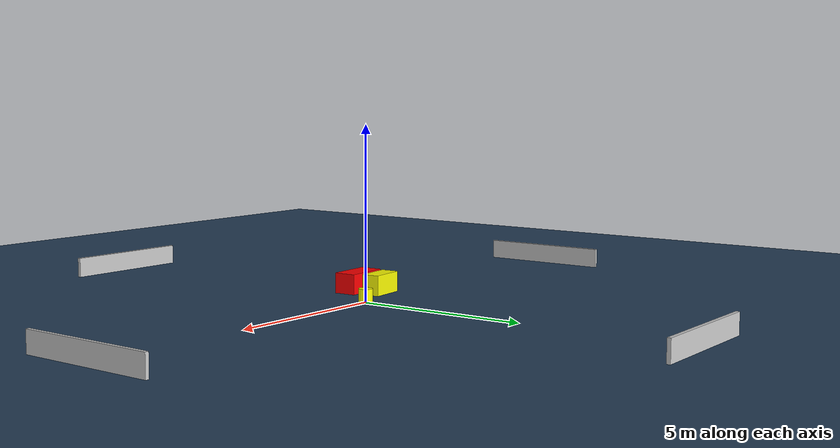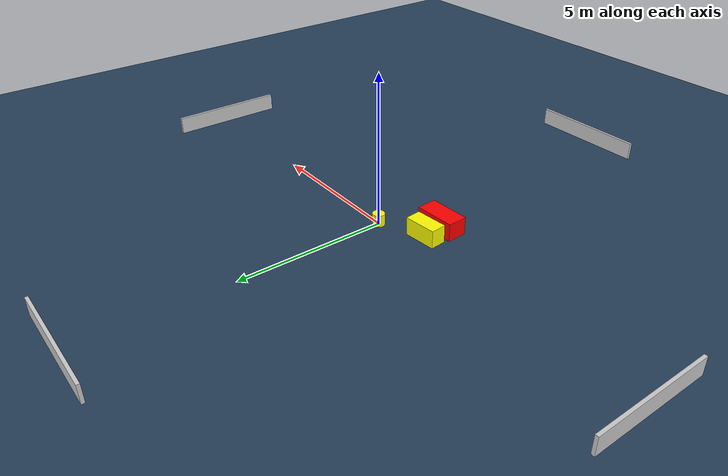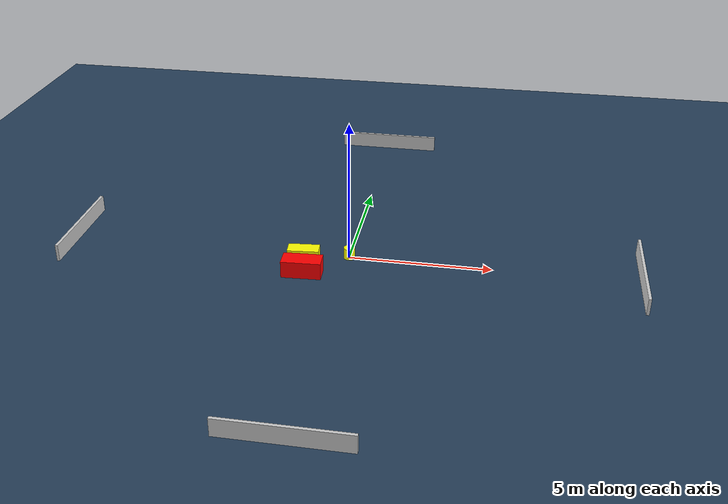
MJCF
<?xml version="1.0" ?>
<mujoco model="generated_environment">
  <option timestep="0.01" integrator="RK4" cone="elliptic"/>
  <default>
    <geom density="1"/>
  </default>
  <asset>
    <texture builtin="gradient" height="3072" name="skybox" rgb1="0.3 0.5 0.7" rgb2="0 0 0" type="skybox" width="512"/>
    <texture builtin="checker" height="300" name="groundplane" rgb1="0.2 0.3 0.4" rgb2="0.1 0.2 0.3" type="2d" width="300"/>
    <material name="groundplane" reflectance="0.2" texrepeat="5 5" texture="groundplane"/>
  </asset>
  <worldbody>
    <light dir="0 0 -1" directional="true" pos="0 0 1.5"/>
    <geom condim="3" friction="0.5 0.005 0.001" material="groundplane" name="floor" pos="0 0 0" size="0 0 0.05" type="plane"/>
    <body name="walls">
      <geom name="wall_1" condim="4" pos="-10.0 0.0 0.3" rgba="0.800000011920929 0.800000011920929 0.800000011920929 1.0" size="0.05 2.0 0.3" type="box"/>
      <geom name="wall_2" condim="4" pos="10.0 0.0 0.3" rgba="0.800000011920929 0.800000011920929 0.800000011920929 1.0" size="0.05 2.0 0.3" type="box"/>
      <geom name="wall_3" condim="4" pos="0.0 -10.0 0.3" rgba="0.800000011920929 0.800000011920929 0.800000011920929 1.0" size="2.0 0.05 0.3" type="box"/>
      <geom name="wall_4" condim="4" pos="0.0 10.0 0.3" rgba="0.800000011920929 0.800000011920929 0.800000011920929 1.0" size="2.0 0.05 0.3" type="box"/>
    </body>
    <body name="robot">
      <joint name="joint_x" type="slide" pos="0 0 0" axis="1 0 0"/>
      <joint name="joint_y" type="slide" pos="0 0 0" axis="0 1 0"/>
      <geom name="robot" type="cylinder" pos="0.0 0.0 0.2" size="0.2 0.2 0.0" mass="5.0" friction="1.0 0.005 0.0001" condim="4" rgba="1.0 1.0 0.0 1.0"/>
    </body>
    <body name="obstacle_1_movable">
      <geom name="obstacle_1_movable" condim="4" pos="-1.5063564049892046 -0.6328863728629709 0.3" euler="0 0 185.02916091977173" friction="0.0 0.005 0.001" rgba="1.0 1.0 0.0 1.0" size="0.5473702208889137 0.2633658513844608 0.3" type="box" mass="0.1"/>
      <joint type="free"/>
    </body>
    <body name="obstacle_2_static">
      <geom name="obstacle_2_static" condim="4" pos="-1.4003515724554922 -1.3767823587810044 0.3" euler="0 0 92.90646426596601" friction="0.0 0.005 0.001" rgba="1.0 0.0 0.0 1.0" size="0.33551600894101374 0.6851522831478549 0.3" type="box"/>
    </body>
  </worldbody>
  <actuator>
    <motor name="actuator_x" joint="joint_x" gear="1" ctrlrange="-1 1"/>
    <motor name="actuator_y" joint="joint_y" gear="1" ctrlrange="-1 1"/>
  </actuator>
</mujoco>
